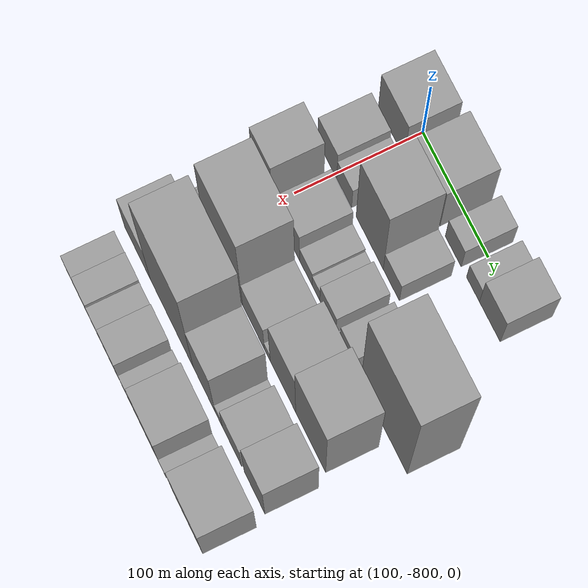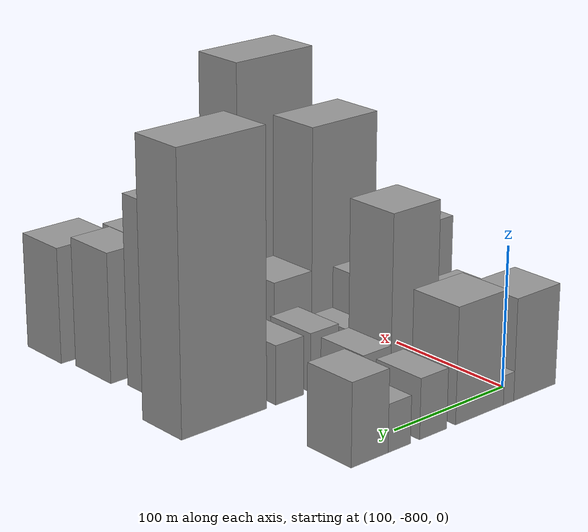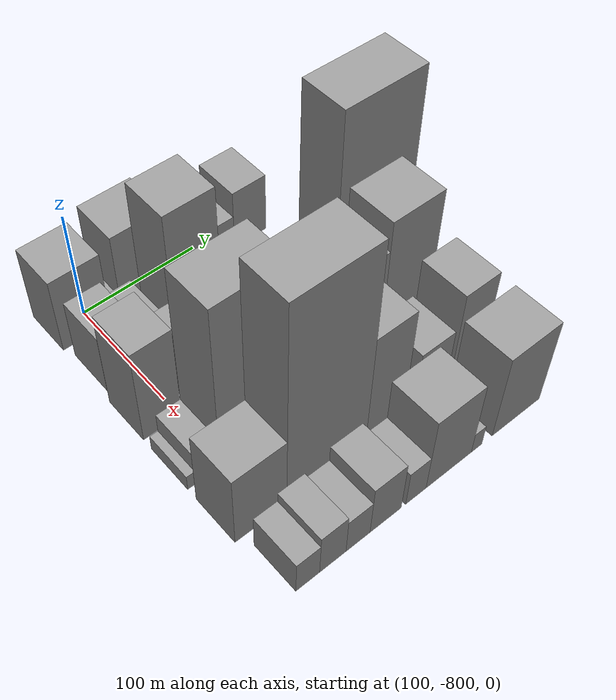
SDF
<sdf version="1.6">
 <world name="default">
  <model name="building_1">
   <static>1</static>
   <pose>100.0000 -809.5537 0 0.000000 0.000000 0.000000</pose>
   <link name="link">
    <pose>0 0 36.00 0 0 0</pose>
    <collision name="collision"><geometry><box><size>40.0000 40.8926 72.0000</size></box></geometry></collision>
    <visual name="visual">
     <cast_shadows>0</cast_shadows>
     <geometry><box><size>40.0000 40.8926 72.0000</size></box></geometry>
     <material>
      <script>
       <uri>model://grey_wall/materials/scripts</uri>
       <uri>model://grey_wall/materials/textures</uri>
       <name>vrc/grey_wall</name>
      </script>
     </material>
    </visual>
   </link>
  </model>
  <model name="building_2">
   <static>1</static>
   <pose>100.0000 -784.1616 0 0.000000 0.000000 0.000000</pose>
   <link name="link">
    <pose>0 0 10.50 0 0 0</pose>
    <collision name="collision"><geometry><box><size>40.0000 9.8917 21.0000</size></box></geometry></collision>
    <visual name="visual">
     <cast_shadows>0</cast_shadows>
     <geometry><box><size>40.0000 9.8917 21.0000</size></box></geometry>
     <material>
      <script>
       <uri>model://grey_wall/materials/scripts</uri>
       <uri>model://grey_wall/materials/textures</uri>
       <name>vrc/grey_wall</name>
      </script>
     </material>
    </visual>
   </link>
  </model>
  <model name="building_3">
   <static>1</static>
   <pose>100.0000 -756.8872 0 0.000000 0.000000 0.000000</pose>
   <link name="link">
    <pose>0 0 40.50 0 0 0</pose>
    <collision name="collision"><geometry><box><size>40.0000 44.6570 81.0000</size></box></geometry></collision>
    <visual name="visual">
     <cast_shadows>0</cast_shadows>
     <geometry><box><size>40.0000 44.6570 81.0000</size></box></geometry>
     <material>
      <script>
       <uri>model://grey_wall/materials/scripts</uri>
       <uri>model://grey_wall/materials/textures</uri>
       <name>vrc/grey_wall</name>
      </script>
     </material>
    </visual>
   </link>
  </model>
  <model name="building_4">
   <static>1</static>
   <pose>100.0000 -714.4112 0 0.000000 0.000000 0.000000</pose>
   <link name="link">
    <pose>0 0 21.00 0 0 0</pose>
    <collision name="collision"><geometry><box><size>40.0000 24.2951 42.0000</size></box></geometry></collision>
    <visual name="visual">
     <cast_shadows>0</cast_shadows>
     <geometry><box><size>40.0000 24.2951 42.0000</size></box></geometry>
     <material>
      <script>
       <uri>model://grey_wall/materials/scripts</uri>
       <uri>model://grey_wall/materials/textures</uri>
       <name>vrc/grey_wall</name>
      </script>
     </material>
    </visual>
   </link>
  </model>
  <model name="building_5">
   <static>1</static>
   <pose>100.0000 -684.5059 0 0.000000 0.000000 0.000000</pose>
   <link name="link">
    <pose>0 0 16.50 0 0 0</pose>
    <collision name="collision"><geometry><box><size>40.0000 19.5154 33.0000</size></box></geometry></collision>
    <visual name="visual">
     <cast_shadows>0</cast_shadows>
     <geometry><box><size>40.0000 19.5154 33.0000</size></box></geometry>
     <material>
      <script>
       <uri>model://grey_wall/materials/scripts</uri>
       <uri>model://grey_wall/materials/textures</uri>
       <name>vrc/grey_wall</name>
      </script>
     </material>
    </visual>
   </link>
  </model>
  <model name="building_6">
   <static>1</static>
   <pose>100.0000 -659.1388 0 0.000000 0.000000 0.000000</pose>
   <link name="link">
    <pose>0 0 28.50 0 0 0</pose>
    <collision name="collision"><geometry><box><size>40.0000 31.2190 57.0000</size></box></geometry></collision>
    <visual name="visual">
     <cast_shadows>0</cast_shadows>
     <geometry><box><size>40.0000 31.2190 57.0000</size></box></geometry>
     <material>
      <script>
       <uri>model://grey_wall/materials/scripts</uri>
       <uri>model://grey_wall/materials/textures</uri>
       <name>vrc/grey_wall</name>
      </script>
     </material>
    </visual>
   </link>
  </model>
  <model name="building_48">
   <static>1</static>
   <pose>149.0000 -811.1918 0 0.000000 0.000000 0.000000</pose>
   <link name="link">
    <pose>0 0 28.50 0 0 0</pose>
    <collision name="collision"><geometry><box><size>40.0000 29.6163 57.0000</size></box></geometry></collision>
    <visual name="visual">
     <cast_shadows>0</cast_shadows>
     <geometry><box><size>40.0000 29.6163 57.0000</size></box></geometry>
     <material>
      <script>
       <uri>model://grey_wall/materials/scripts</uri>
       <uri>model://grey_wall/materials/textures</uri>
       <name>vrc/grey_wall</name>
      </script>
     </material>
    </visual>
   </link>
  </model>
  <model name="building_49">
   <static>1</static>
   <pose>149.0000 -784.8462 0 0.000000 0.000000 0.000000</pose>
   <link name="link">
    <pose>0 0 21.00 0 0 0</pose>
    <collision name="collision"><geometry><box><size>40.0000 23.0750 42.0000</size></box></geometry></collision>
    <visual name="visual">
     <cast_shadows>0</cast_shadows>
     <geometry><box><size>40.0000 23.0750 42.0000</size></box></geometry>
     <material>
      <script>
       <uri>model://grey_wall/materials/scripts</uri>
       <uri>model://grey_wall/materials/textures</uri>
       <name>vrc/grey_wall</name>
      </script>
     </material>
    </visual>
   </link>
  </model>
  <model name="building_50">
   <static>1</static>
   <pose>149.0000 -745.3304 0 0.000000 0.000000 0.000000</pose>
   <link name="link">
    <pose>0 0 66.00 0 0 0</pose>
    <collision name="collision"><geometry><box><size>40.0000 41.9566 132.0000</size></box></geometry></collision>
    <visual name="visual">
     <cast_shadows>0</cast_shadows>
     <geometry><box><size>40.0000 41.9566 132.0000</size></box></geometry>
     <material>
      <script>
       <uri>model://grey_wall/materials/scripts</uri>
       <uri>model://grey_wall/materials/textures</uri>
       <name>vrc/grey_wall</name>
      </script>
     </material>
    </visual>
   </link>
  </model>
  <model name="building_51">
   <static>1</static>
   <pose>149.0000 -711.9755 0 0.000000 0.000000 0.000000</pose>
   <link name="link">
    <pose>0 0 21.00 0 0 0</pose>
    <collision name="collision"><geometry><box><size>40.0000 24.7531 42.0000</size></box></geometry></collision>
    <visual name="visual">
     <cast_shadows>0</cast_shadows>
     <geometry><box><size>40.0000 24.7531 42.0000</size></box></geometry>
     <material>
      <script>
       <uri>model://grey_wall/materials/scripts</uri>
       <uri>model://grey_wall/materials/textures</uri>
       <name>vrc/grey_wall</name>
      </script>
     </material>
    </visual>
   </link>
  </model>
  <model name="building_96">
   <static>1</static>
   <pose>198.0000 -814.1758 0 0.000000 0.000000 0.000000</pose>
   <link name="link">
    <pose>0 0 46.50 0 0 0</pose>
    <collision name="collision"><geometry><box><size>40.0000 31.6484 93.0000</size></box></geometry></collision>
    <visual name="visual">
     <cast_shadows>0</cast_shadows>
     <geometry><box><size>40.0000 31.6484 93.0000</size></box></geometry>
     <material>
      <script>
       <uri>model://grey_wall/materials/scripts</uri>
       <uri>model://grey_wall/materials/textures</uri>
       <name>vrc/grey_wall</name>
      </script>
     </material>
    </visual>
   </link>
  </model>
  <model name="building_97">
   <static>1</static>
   <pose>198.0000 -771.7618 0 0.000000 0.000000 0.000000</pose>
   <link name="link">
    <pose>0 0 31.50 0 0 0</pose>
    <collision name="collision"><geometry><box><size>40.0000 33.1794 63.0000</size></box></geometry></collision>
    <visual name="visual">
     <cast_shadows>0</cast_shadows>
     <geometry><box><size>40.0000 33.1794 63.0000</size></box></geometry>
     <material>
      <script>
       <uri>model://grey_wall/materials/scripts</uri>
       <uri>model://grey_wall/materials/textures</uri>
       <name>vrc/grey_wall</name>
      </script>
     </material>
    </visual>
   </link>
  </model>
  <model name="building_98">
   <static>1</static>
   <pose>198.0000 -745.2955 0 0.000000 0.000000 0.000000</pose>
   <link name="link">
    <pose>0 0 16.50 0 0 0</pose>
    <collision name="collision"><geometry><box><size>40.0000 19.7532 33.0000</size></box></geometry></collision>
    <visual name="visual">
     <cast_shadows>0</cast_shadows>
     <geometry><box><size>40.0000 19.7532 33.0000</size></box></geometry>
     <material>
      <script>
       <uri>model://grey_wall/materials/scripts</uri>
       <uri>model://grey_wall/materials/textures</uri>
       <name>vrc/grey_wall</name>
      </script>
     </material>
    </visual>
   </link>
  </model>
  <model name="building_99">
   <static>1</static>
   <pose>198.0000 -729.5139 0 0.000000 0.000000 0.000000</pose>
   <link name="link">
    <pose>0 0 13.50 0 0 0</pose>
    <collision name="collision"><geometry><box><size>40.0000 11.8100 27.0000</size></box></geometry></collision>
    <visual name="visual">
     <cast_shadows>0</cast_shadows>
     <geometry><box><size>40.0000 11.8100 27.0000</size></box></geometry>
     <material>
      <script>
       <uri>model://grey_wall/materials/scripts</uri>
       <uri>model://grey_wall/materials/textures</uri>
       <name>vrc/grey_wall</name>
      </script>
     </material>
    </visual>
   </link>
  </model>
  <model name="building_100">
   <static>1</static>
   <pose>198.0000 -711.1180 0 0.000000 0.000000 0.000000</pose>
   <link name="link">
    <pose>0 0 21.00 0 0 0</pose>
    <collision name="collision"><geometry><box><size>40.0000 24.9818 42.0000</size></box></geometry></collision>
    <visual name="visual">
     <cast_shadows>0</cast_shadows>
     <geometry><box><size>40.0000 24.9818 42.0000</size></box></geometry>
     <material>
      <script>
       <uri>model://grey_wall/materials/scripts</uri>
       <uri>model://grey_wall/materials/textures</uri>
       <name>vrc/grey_wall</name>
      </script>
     </material>
    </visual>
   </link>
  </model>
  <model name="building_101">
   <static>1</static>
   <pose>198.0000 -680.5444 0 0.000000 0.000000 0.000000</pose>
   <link name="link">
    <pose>0 0 21.00 0 0 0</pose>
    <collision name="collision"><geometry><box><size>40.0000 24.1653 42.0000</size></box></geometry></collision>
    <visual name="visual">
     <cast_shadows>0</cast_shadows>
     <geometry><box><size>40.0000 24.1653 42.0000</size></box></geometry>
     <material>
      <script>
       <uri>model://grey_wall/materials/scripts</uri>
       <uri>model://grey_wall/materials/textures</uri>
       <name>vrc/grey_wall</name>
      </script>
     </material>
    </visual>
   </link>
  </model>
  <model name="building_102">
   <static>1</static>
   <pose>198.0000 -625.3076 0 0.000000 0.000000 0.000000</pose>
   <link name="link">
    <pose>0 0 96.00 0 0 0</pose>
    <collision name="collision"><geometry><box><size>40.0000 70.3082 192.0000</size></box></geometry></collision>
    <visual name="visual">
     <cast_shadows>0</cast_shadows>
     <geometry><box><size>40.0000 70.3082 192.0000</size></box></geometry>
     <material>
      <script>
       <uri>model://grey_wall/materials/scripts</uri>
       <uri>model://grey_wall/materials/textures</uri>
       <name>vrc/grey_wall</name>
      </script>
     </material>
    </visual>
   </link>
  </model>
  <model name="building_148">
   <static>1</static>
   <pose>247.0000 -826.6048 0 0.000000 0.000000 0.000000</pose>
   <link name="link">
    <pose>0 0 7.50 0 0 0</pose>
    <collision name="collision"><geometry><box><size>40.0000 6.7904 15.0000</size></box></geometry></collision>
    <visual name="visual">
     <cast_shadows>0</cast_shadows>
     <geometry><box><size>40.0000 6.7904 15.0000</size></box></geometry>
     <material>
      <script>
       <uri>model://grey_wall/materials/scripts</uri>
       <uri>model://grey_wall/materials/textures</uri>
       <name>vrc/grey_wall</name>
      </script>
     </material>
    </visual>
   </link>
  </model>
  <model name="building_149">
   <static>1</static>
   <pose>247.0000 -813.3584 0 0.000000 0.000000 0.000000</pose>
   <link name="link">
    <pose>0 0 16.50 0 0 0</pose>
    <collision name="collision"><geometry><box><size>40.0000 19.7025 33.0000</size></box></geometry></collision>
    <visual name="visual">
     <cast_shadows>0</cast_shadows>
     <geometry><box><size>40.0000 19.7025 33.0000</size></box></geometry>
     <material>
      <script>
       <uri>model://grey_wall/materials/scripts</uri>
       <uri>model://grey_wall/materials/textures</uri>
       <name>vrc/grey_wall</name>
      </script>
     </material>
    </visual>
   </link>
  </model>
  <model name="building_150">
   <static>1</static>
   <pose>247.0000 -773.7321 0 0.000000 0.000000 0.000000</pose>
   <link name="link">
    <pose>0 0 81.00 0 0 0</pose>
    <collision name="collision"><geometry><box><size>40.0000 59.5501 162.0000</size></box></geometry></collision>
    <visual name="visual">
     <cast_shadows>0</cast_shadows>
     <geometry><box><size>40.0000 59.5501 162.0000</size></box></geometry>
     <material>
      <script>
       <uri>model://grey_wall/materials/scripts</uri>
       <uri>model://grey_wall/materials/textures</uri>
       <name>vrc/grey_wall</name>
      </script>
     </material>
    </visual>
   </link>
  </model>
  <model name="building_151">
   <static>1</static>
   <pose>247.0000 -726.9221 0 0.000000 0.000000 0.000000</pose>
   <link name="link">
    <pose>0 0 30.00 0 0 0</pose>
    <collision name="collision"><geometry><box><size>40.0000 34.0699 60.0000</size></box></geometry></collision>
    <visual name="visual">
     <cast_shadows>0</cast_shadows>
     <geometry><box><size>40.0000 34.0699 60.0000</size></box></geometry>
     <material>
      <script>
       <uri>model://grey_wall/materials/scripts</uri>
       <uri>model://grey_wall/materials/textures</uri>
       <name>vrc/grey_wall</name>
      </script>
     </material>
    </visual>
   </link>
  </model>
  <model name="building_152">
   <static>1</static>
   <pose>247.0000 -705.2223 0 0.000000 0.000000 0.000000</pose>
   <link name="link">
    <pose>0 0 10.50 0 0 0</pose>
    <collision name="collision"><geometry><box><size>40.0000 9.3296 21.0000</size></box></geometry></collision>
    <visual name="visual">
     <cast_shadows>0</cast_shadows>
     <geometry><box><size>40.0000 9.3296 21.0000</size></box></geometry>
     <material>
      <script>
       <uri>model://grey_wall/materials/scripts</uri>
       <uri>model://grey_wall/materials/textures</uri>
       <name>vrc/grey_wall</name>
      </script>
     </material>
    </visual>
   </link>
  </model>
  <model name="building_153">
   <static>1</static>
   <pose>247.0000 -680.8584 0 0.000000 0.000000 0.000000</pose>
   <link name="link">
    <pose>0 0 54.00 0 0 0</pose>
    <collision name="collision"><geometry><box><size>40.0000 39.3983 108.0000</size></box></geometry></collision>
    <visual name="visual">
     <cast_shadows>0</cast_shadows>
     <geometry><box><size>40.0000 39.3983 108.0000</size></box></geometry>
     <material>
      <script>
       <uri>model://grey_wall/materials/scripts</uri>
       <uri>model://grey_wall/materials/textures</uri>
       <name>vrc/grey_wall</name>
      </script>
     </material>
    </visual>
   </link>
  </model>
  <model name="building_154">
   <static>1</static>
   <pose>247.0000 -638.1900 0 0.000000 0.000000 0.000000</pose>
   <link name="link">
    <pose>0 0 67.50 0 0 0</pose>
    <collision name="collision"><geometry><box><size>40.0000 45.9385 135.0000</size></box></geometry></collision>
    <visual name="visual">
     <cast_shadows>0</cast_shadows>
     <geometry><box><size>40.0000 45.9385 135.0000</size></box></geometry>
     <material>
      <script>
       <uri>model://grey_wall/materials/scripts</uri>
       <uri>model://grey_wall/materials/textures</uri>
       <name>vrc/grey_wall</name>
      </script>
     </material>
    </visual>
   </link>
  </model>
  <model name="building_194">
   <static>1</static>
   <pose>296.0000 -808.8765 0 0.000000 0.000000 0.000000</pose>
   <link name="link">
    <pose>0 0 36.00 0 0 0</pose>
    <collision name="collision"><geometry><box><size>40.0000 42.2470 72.0000</size></box></geometry></collision>
    <visual name="visual">
     <cast_shadows>0</cast_shadows>
     <geometry><box><size>40.0000 42.2470 72.0000</size></box></geometry>
     <material>
      <script>
       <uri>model://grey_wall/materials/scripts</uri>
       <uri>model://grey_wall/materials/textures</uri>
       <name>vrc/grey_wall</name>
      </script>
     </material>
    </visual>
   </link>
  </model>
  <model name="building_195">
   <static>1</static>
   <pose>296.0000 -753.5708 0 0.000000 0.000000 0.000000</pose>
   <link name="link">
    <pose>0 0 100.50 0 0 0</pose>
    <collision name="collision"><geometry><box><size>40.0000 68.3645 201.0000</size></box></geometry></collision>
    <visual name="visual">
     <cast_shadows>0</cast_shadows>
     <geometry><box><size>40.0000 68.3645 201.0000</size></box></geometry>
     <material>
      <script>
       <uri>model://grey_wall/materials/scripts</uri>
       <uri>model://grey_wall/materials/textures</uri>
       <name>vrc/grey_wall</name>
      </script>
     </material>
    </visual>
   </link>
  </model>
  <model name="building_196">
   <static>1</static>
   <pose>296.0000 -702.2759 0 0.000000 0.000000 0.000000</pose>
   <link name="link">
    <pose>0 0 57.00 0 0 0</pose>
    <collision name="collision"><geometry><box><size>40.0000 34.2254 114.0000</size></box></geometry></collision>
    <visual name="visual">
     <cast_shadows>0</cast_shadows>
     <geometry><box><size>40.0000 34.2254 114.0000</size></box></geometry>
     <material>
      <script>
       <uri>model://grey_wall/materials/scripts</uri>
       <uri>model://grey_wall/materials/textures</uri>
       <name>vrc/grey_wall</name>
      </script>
     </material>
    </visual>
   </link>
  </model>
  <model name="building_197">
   <static>1</static>
   <pose>296.0000 -679.5792 0 0.000000 0.000000 0.000000</pose>
   <link name="link">
    <pose>0 0 13.50 0 0 0</pose>
    <collision name="collision"><geometry><box><size>40.0000 11.1678 27.0000</size></box></geometry></collision>
    <visual name="visual">
     <cast_shadows>0</cast_shadows>
     <geometry><box><size>40.0000 11.1678 27.0000</size></box></geometry>
     <material>
      <script>
       <uri>model://grey_wall/materials/scripts</uri>
       <uri>model://grey_wall/materials/textures</uri>
       <name>vrc/grey_wall</name>
      </script>
     </material>
    </visual>
   </link>
  </model>
  <model name="building_198">
   <static>1</static>
   <pose>296.0000 -658.9197 0 0.000000 0.000000 0.000000</pose>
   <link name="link">
    <pose>0 0 30.00 0 0 0</pose>
    <collision name="collision"><geometry><box><size>40.0000 30.1513 60.0000</size></box></geometry></collision>
    <visual name="visual">
     <cast_shadows>0</cast_shadows>
     <geometry><box><size>40.0000 30.1513 60.0000</size></box></geometry>
     <material>
      <script>
       <uri>model://grey_wall/materials/scripts</uri>
       <uri>model://grey_wall/materials/textures</uri>
       <name>vrc/grey_wall</name>
      </script>
     </material>
    </visual>
   </link>
  </model>
  <model name="building_199">
   <static>1</static>
   <pose>296.0000 -623.8943 0 0.000000 0.000000 0.000000</pose>
   <link name="link">
    <pose>0 0 46.50 0 0 0</pose>
    <collision name="collision"><geometry><box><size>40.0000 31.8995 93.0000</size></box></geometry></collision>
    <visual name="visual">
     <cast_shadows>0</cast_shadows>
     <geometry><box><size>40.0000 31.8995 93.0000</size></box></geometry>
     <material>
      <script>
       <uri>model://grey_wall/materials/scripts</uri>
       <uri>model://grey_wall/materials/textures</uri>
       <name>vrc/grey_wall</name>
      </script>
     </material>
    </visual>
   </link>
  </model>
  <model name="building_246">
   <static>1</static>
   <pose>345.0000 -812.4630 0 0.000000 0.000000 0.000000</pose>
   <link name="link">
    <pose>0 0 16.50 0 0 0</pose>
    <collision name="collision"><geometry><box><size>40.0000 19.0741 33.0000</size></box></geometry></collision>
    <visual name="visual">
     <cast_shadows>0</cast_shadows>
     <geometry><box><size>40.0000 19.0741 33.0000</size></box></geometry>
     <material>
      <script>
       <uri>model://grey_wall/materials/scripts</uri>
       <uri>model://grey_wall/materials/textures</uri>
       <name>vrc/grey_wall</name>
      </script>
     </material>
    </visual>
   </link>
  </model>
  <model name="building_247">
   <static>1</static>
   <pose>345.0000 -792.0735 0 0.000000 0.000000 0.000000</pose>
   <link name="link">
    <pose>0 0 21.00 0 0 0</pose>
    <collision name="collision"><geometry><box><size>40.0000 21.7049 42.0000</size></box></geometry></collision>
    <visual name="visual">
     <cast_shadows>0</cast_shadows>
     <geometry><box><size>40.0000 21.7049 42.0000</size></box></geometry>
     <material>
      <script>
       <uri>model://grey_wall/materials/scripts</uri>
       <uri>model://grey_wall/materials/textures</uri>
       <name>vrc/grey_wall</name>
      </script>
     </material>
    </visual>
   </link>
  </model>
  <model name="building_248">
   <static>1</static>
   <pose>345.0000 -771.0779 0 0.000000 0.000000 0.000000</pose>
   <link name="link">
    <pose>0 0 18.00 0 0 0</pose>
    <collision name="collision"><geometry><box><size>40.0000 20.2862 36.0000</size></box></geometry></collision>
    <visual name="visual">
     <cast_shadows>0</cast_shadows>
     <geometry><box><size>40.0000 20.2862 36.0000</size></box></geometry>
     <material>
      <script>
       <uri>model://grey_wall/materials/scripts</uri>
       <uri>model://grey_wall/materials/textures</uri>
       <name>vrc/grey_wall</name>
      </script>
     </material>
    </visual>
   </link>
  </model>
  <model name="building_249">
   <static>1</static>
   <pose>345.0000 -747.3545 0 0.000000 0.000000 0.000000</pose>
   <link name="link">
    <pose>0 0 25.50 0 0 0</pose>
    <collision name="collision"><geometry><box><size>40.0000 27.1606 51.0000</size></box></geometry></collision>
    <visual name="visual">
     <cast_shadows>0</cast_shadows>
     <geometry><box><size>40.0000 27.1606 51.0000</size></box></geometry>
     <material>
      <script>
       <uri>model://grey_wall/materials/scripts</uri>
       <uri>model://grey_wall/materials/textures</uri>
       <name>vrc/grey_wall</name>
      </script>
     </material>
    </visual>
   </link>
  </model>
  <model name="building_250">
   <static>1</static>
   <pose>345.0000 -720.6937 0 0.000000 0.000000 0.000000</pose>
   <link name="link">
    <pose>0 0 18.00 0 0 0</pose>
    <collision name="collision"><geometry><box><size>40.0000 18.1611 36.0000</size></box></geometry></collision>
    <visual name="visual">
     <cast_shadows>0</cast_shadows>
     <geometry><box><size>40.0000 18.1611 36.0000</size></box></geometry>
     <material>
      <script>
       <uri>model://grey_wall/materials/scripts</uri>
       <uri>model://grey_wall/materials/textures</uri>
       <name>vrc/grey_wall</name>
      </script>
     </material>
    </visual>
   </link>
  </model>
  <model name="building_251">
   <static>1</static>
   <pose>345.0000 -690.5927 0 0.000000 0.000000 0.000000</pose>
   <link name="link">
    <pose>0 0 37.50 0 0 0</pose>
    <collision name="collision"><geometry><box><size>40.0000 42.0409 75.0000</size></box></geometry></collision>
    <visual name="visual">
     <cast_shadows>0</cast_shadows>
     <geometry><box><size>40.0000 42.0409 75.0000</size></box></geometry>
     <material>
      <script>
       <uri>model://grey_wall/materials/scripts</uri>
       <uri>model://grey_wall/materials/textures</uri>
       <name>vrc/grey_wall</name>
      </script>
     </material>
    </visual>
   </link>
  </model>
  <model name="building_252">
   <static>1</static>
   <pose>345.0000 -664.4527 0 0.000000 0.000000 0.000000</pose>
   <link name="link">
    <pose>0 0 10.50 0 0 0</pose>
    <collision name="collision"><geometry><box><size>40.0000 10.2392 21.0000</size></box></geometry></collision>
    <visual name="visual">
     <cast_shadows>0</cast_shadows>
     <geometry><box><size>40.0000 10.2392 21.0000</size></box></geometry>
     <material>
      <script>
       <uri>model://grey_wall/materials/scripts</uri>
       <uri>model://grey_wall/materials/textures</uri>
       <name>vrc/grey_wall</name>
      </script>
     </material>
    </visual>
   </link>
  </model>
  <model name="building_253">
   <static>1</static>
   <pose>345.0000 -625.8617 0 0.000000 0.000000 0.000000</pose>
   <link name="link">
    <pose>0 0 42.00 0 0 0</pose>
    <collision name="collision"><geometry><box><size>40.0000 46.9427 84.0000</size></box></geometry></collision>
    <visual name="visual">
     <cast_shadows>0</cast_shadows>
     <geometry><box><size>40.0000 46.9427 84.0000</size></box></geometry>
     <material>
      <script>
       <uri>model://grey_wall/materials/scripts</uri>
       <uri>model://grey_wall/materials/textures</uri>
       <name>vrc/grey_wall</name>
      </script>
     </material>
    </visual>
   </link>
  </model>
 </world>
</sdf>
